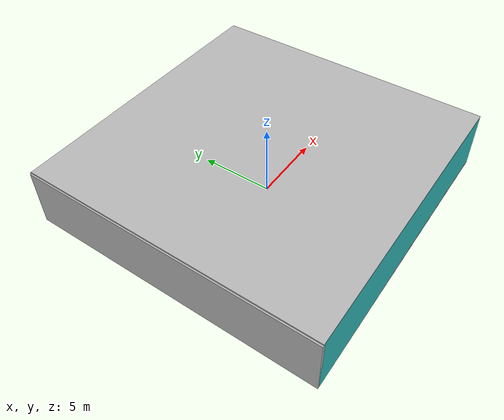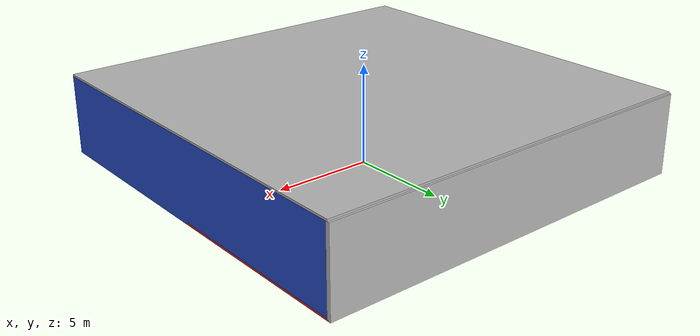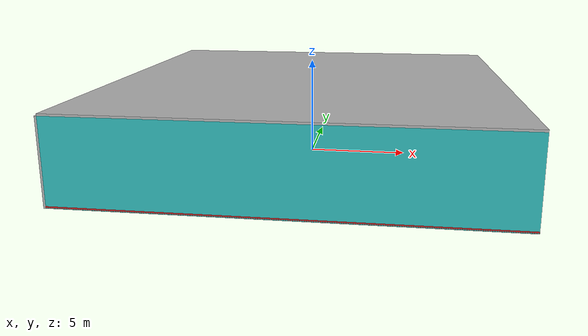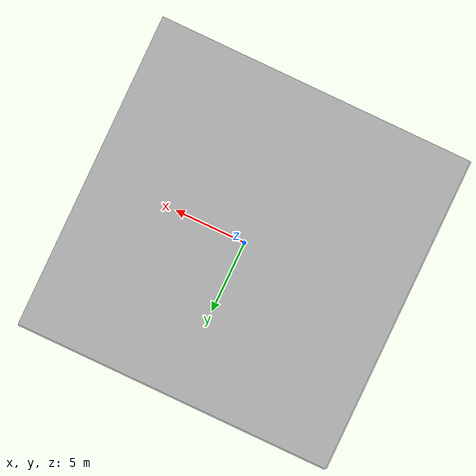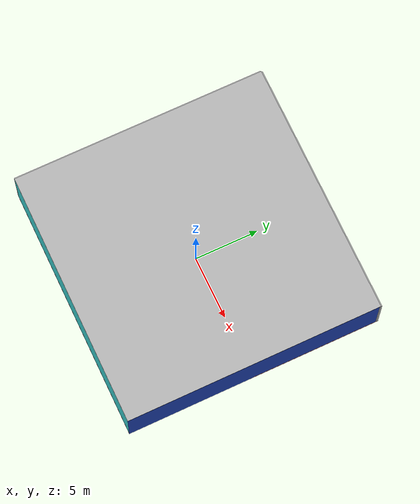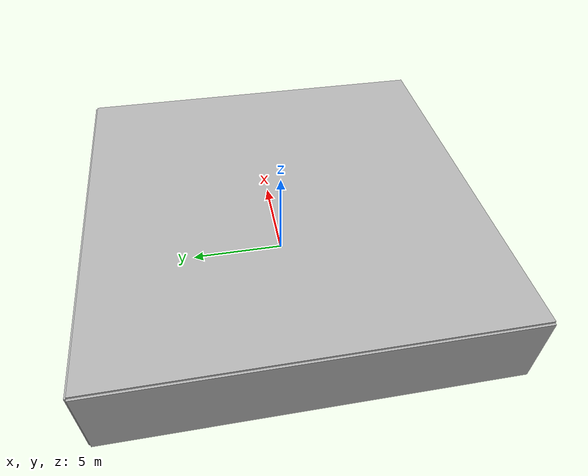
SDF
<sdf version="1.4">
 <world name="default">
  <physics type="ode">
   <max_step_size>0.001</max_step_size>
   <real_time_factor>1</real_time_factor>
   <real_time_update_rate>1000</real_time_update_rate>
   <gravity>0 0 -9.8</gravity>
  </physics>
  <scene><ambient>0.4 0.4 0.4 1</ambient><background>0.7 0.7 0.7 1</background><shadows>1</shadows></scene>
  <model name="Surrounding">
   <static>1</static>
   <link name="Ceiling">
    <collision name="Ceiling_Collision"><geometry><box><size>20 20 0.1</size></box></geometry></collision>
    <visual name="Ceiling_Visual">
     <geometry><box><size>20 20 0.1</size></box></geometry>
     <material>
      <script><uri>file://media/materials/scripts/gazebo.material</uri><name>Gazebo/LightOn</name></script>
     </material>
    </visual>
    <pose>0 0 4.05 0 0 0</pose>
   </link>
   <link name="Wall_South">
    <collision name="Wall_South_Collision">
     <geometry><box><size>20 0 4</size></box></geometry>
     <pose>0 0 2 0 -0 0</pose>
    </collision>
    <visual name="Wall_South_Visual">
     <pose>0 0 2 0 -0 0</pose>
     <geometry><box><size>20 0 4</size></box></geometry>
     <material>
      <script><uri>file://media/materials/scripts/gazebo.material</uri><name>Gazebo/Turquoise</name></script>
     </material>
    </visual>
    <velocity_decay><linear>0</linear><angular>0</angular></velocity_decay>
    <pose>0 -10 0 0 -0 0</pose>
   </link>
   <link name="Wall_East">
    <collision name="Wall_21_Collision">
     <geometry><box><size>20 0 4</size></box></geometry>
     <pose>0 0 2 0 -0 0</pose>
    </collision>
    <visual name="Wall_21_Visual">
     <pose>0 0 2 0 -0 0</pose>
     <geometry><box><size>20 0 4</size></box></geometry>
     <material>
      <script><uri>file://media/materials/scripts/gazebo.material</uri><name>Gazebo/BlueGlow</name></script>
     </material>
    </visual>
    <velocity_decay><linear>0</linear><angular>0</angular></velocity_decay>
    <pose>10 0 0 0 -0 1.5708</pose>
   </link>
   <link name="Wall_North">
    <collision name="Wall_22_Collision">
     <geometry><box><size>20 0.2 4</size></box></geometry>
     <pose>0 0 2 0 -0 0</pose>
    </collision>
    <visual name="Wall_22_Visual">
     <pose>0 0 2 0 -0 0</pose>
     <geometry><box><size>20 0.2 4</size></box></geometry>
     <material>
      <script><uri>file://media/materials/scripts/gazebo.material</uri><name>Gazebo/JointAnchor</name></script>
     </material>
    </visual>
    <velocity_decay><linear>0</linear><angular>0</angular></velocity_decay>
    <pose>0 10 0 0 -0 0</pose>
   </link>
   <link name="Wall_West">
    <collision name="Wall_23_Collision">
     <geometry><box><size>20 0.2 4</size></box></geometry>
     <pose>0 0 2 0 -0 0</pose>
    </collision>
    <visual name="Wall_23_Visual">
     <pose>0 0 2 0 -0 0</pose>
     <geometry><box><size>20 0.2 4</size></box></geometry>
     <material>
      <script><uri>file://media/materials/scripts/gazebo.material</uri><name>Gazebo/LightOff</name></script>
     </material>
    </visual>
    <velocity_decay><linear>0</linear><angular>0</angular></velocity_decay>
    <pose>-10 0 0 0 0 -1.5708</pose>
   </link>
   <link name="Ground_link">
    <collision name="collision">
     <pose>0 0 .05 0 -0 0</pose>
     <geometry><box><size>20 20 0.1</size></box></geometry>
    </collision>
    <visual name="visual">
     <pose>0 0 .05 0 -0 0</pose>
     <geometry><box><size>20 20 0.1</size></box></geometry>
     <material>
      <script><uri>file://media/materials/scripts/gazebo.material</uri><name>Gazebo/RedBright</name></script>
     </material>
    </visual>
   </link>
   <static>1</static>
  </model>
  <spherical_coordinates>
   <surface_model>EARTH_WGS84</surface_model>
   <latitude_deg>0</latitude_deg>
   <longitude_deg>0</longitude_deg>
   <elevation>0</elevation>
   <heading_deg>0</heading_deg>
  </spherical_coordinates>
  <light name="lightball_0" type="diffuse">
   <diffuse>0.8 0.8 0.8 1</diffuse>
   <specular>0.2 0.2 0.2 1</specular>
   <attenuation>
    <range>100</range>
    <constant>0.7</constant>
    <linear>0.01</linear>
    <quadratic>0.001</quadratic>
   </attenuation>
   <direction>-0.5 0.1 -0.9</direction>
   <pose>6.41546906474 7.57084572376 3.1178636654 0 0 0</pose>
  </light>
  <light name="lightball_1" type="diffuse">
   <diffuse>0.8 0.8 0.8 1</diffuse>
   <specular>0.2 0.2 0.2 1</specular>
   <attenuation>
    <range>100</range>
    <constant>0.7</constant>
    <linear>0.01</linear>
    <quadratic>0.001</quadratic>
   </attenuation>
   <direction>-0.5 0.1 -0.9</direction>
   <pose>8.66628273404 -4.60793378901 2.59555333521 0 0 0</pose>
  </light>
  <include><uri>model://table</uri><pose>-5.28294889302 -7.49351417783 0 0 0 0.967371134282</pose></include>
  <include><uri>model://table</uri><pose>-5.12532752087 -4.45160288591 0 0 0 1.12184430029</pose></include>
  <include>
   <uri>model://textured_shapes</uri>
   <pose>1.2052220234 -7.13032525165 0 0 0 1.18879681533</pose>
  </include>
  <include><uri>model://table</uri><pose>2.11637560544 1.5473706494 0 0 0 0.0709785548824</pose></include>
  <include><uri>model://table</uri><pose>4.24487425045 -0.939310166803 0 0 0 0.0822285855056</pose></include>
  <include>
   <uri>model://construction_cone</uri>
   <pose>8.17810913785 3.92650837708 0 0 0 2.19535876561</pose>
  </include>
 </world>
</sdf>

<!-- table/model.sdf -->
<sdf version="1.5">
  <model name="table">
    <static>true</static>
    <link name="link">
      <collision name="surface">
        <pose>0 0 1.0 0 0 0</pose>
        <geometry>
          <box>
            <size>1.5 0.8 0.03</size>
          </box>
        </geometry>
        <surface>
          <friction>
            <ode>
              <mu>0.6</mu>
              <mu2>0.6</mu2>
            </ode>
          </friction>
        </surface>
      </collision>
      <visual name="visual1">
        <pose>0 0 1.0 0 0 0</pose>
        <geometry>
          <box>
            <size>1.5 0.8 0.03</size>
          </box>
        </geometry>
        <material>
          <script>
            <uri>model://media/materials/scripts/gazebo.material</uri>
            <name>Gazebo/Wood</name>
          </script>
        </material>
      </visual>
      <collision name="front_left_leg">
        <pose>0.68 0.38 0.5 0 0 0</pose>
        <geometry>
          <cylinder>
            <radius>0.02</radius>
            <length>1.0</length>
          </cylinder>
        </geometry>
      </collision>
      <visual name="front_left_leg">
        <pose>0.68 0.38 0.5 0 0 0</pose>
        <geometry>
          <cylinder>
            <radius>0.02</radius>
            <length>1.0</length>
          </cylinder>
        </geometry>
        <material>
          <script>
            <uri>model://media/materials/scripts/gazebo.material</uri>
            <name>Gazebo/Grey</name>
          </script>
        </material>
      </visual>
      <collision name="front_right_leg">
        <pose>0.68 -0.38 0.5 0 0 0</pose>
        <geometry>
          <cylinder>
            <radius>0.02</radius>
            <length>1.0</length>
          </cylinder>
        </geometry>
      </collision>
      <visual name="front_right_leg">
        <pose>0.68 -0.38 0.5 0 0 0</pose>
        <geometry>
          <cylinder>
            <radius>0.02</radius>
            <length>1.0</length>
          </cylinder>
        </geometry>
        <material>
          <script>
            <uri>model://media/materials/scripts/gazebo.material</uri>
            <name>Gazebo/Grey</name>
          </script>
        </material>
      </visual>
      <collision name="back_right_leg">
        <pose>-0.68 -0.38 0.5 0 0 0</pose>
        <geometry>
          <cylinder>
            <radius>0.02</radius>
            <length>1.0</length>
          </cylinder>
        </geometry>
      </collision>
      <visual name="back_right_leg">
        <pose>-0.68 -0.38 0.5 0 0 0</pose>
        <geometry>
          <cylinder>
            <radius>0.02</radius>
            <length>1.0</length>
          </cylinder>
        </geometry>
        <material>
          <script>
            <uri>model://media/materials/scripts/gazebo.material</uri>
            <name>Gazebo/Grey</name>
          </script>
        </material>
      </visual>
      <collision name="back_left_leg">
        <pose>-0.68 0.38 0.5 0 0 0</pose>
        <geometry>
          <cylinder>
            <radius>0.02</radius>
            <length>1.0</length>
          </cylinder>
        </geometry>
      </collision>
      <visual name="back_left_leg">
        <pose>-0.68 0.38 0.5 0 0 0</pose>
        <geometry>
          <cylinder>
            <radius>0.02</radius>
            <length>1.0</length>
          </cylinder>
        </geometry>
        <material>
          <script>
            <uri>model://media/materials/scripts/gazebo.material</uri>
            <name>Gazebo/Grey</name>
          </script>
        </material>
      </visual>
    </link>
  </model>
</sdf>

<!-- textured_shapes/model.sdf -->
<sdf version="1.6">
  <model name="textured_shapes">
    <pose>0 0 0.5 0 0 0</pose>
    <link name="box">
      <pose>0 -1.5 0 0 0 0</pose>
      <collision name="collision">
        <geometry>
          <box>
            <size>1 1 1</size>
          </box>
        </geometry>
      </collision>
      <visual name="visual">
        <geometry>
          <box>
            <size>1 1 1</size>
          </box>
        </geometry>
        <material>
          <script>
            <uri>model://../model_source/models/textured_shapes/materials/scripts</uri>
            <uri>model://../model_source/models/textured_shapes/materials/textures</uri>
            <name>TexturedShape/Squares</name>
          </script>
        </material>
      </visual>
    </link>
    <link name="sphere">
      <collision name="collision">
        <geometry>
          <sphere>
            <radius>0.5</radius>
          </sphere>
        </geometry>
      </collision>
      <visual name="visual">
        <geometry>
          <sphere>
            <radius>0.5</radius>
          </sphere>
        </geometry>
        <material>
          <script>
            <uri>model://../model_source/models/textured_shapes/materials/scripts</uri>
            <uri>model://../model_source/models/textured_shapes/materials/textures</uri>
            <name>TexturedShape/Squares</name>
          </script>
        </material>
      </visual>
    </link>
    <link name="cylinder">
      <pose>0 1.5 0 0 0 0</pose>
      <collision name="collision">
        <geometry>
          <cylinder>
            <radius>0.5</radius>
            <length>1</length>
          </cylinder>
        </geometry>
      </collision>
      <visual name="visual">
        <geometry>
          <cylinder>
            <radius>0.5</radius>
            <length>1</length>
          </cylinder>
        </geometry>
        <material>
          <script>
            <uri>model://../model_source/models/textured_shapes/materials/scripts</uri>
            <uri>model://../model_source/models/textured_shapes/materials/textures</uri>
            <name>TexturedShape/Squares</name>
          </script>
        </material>
      </visual>
    </link>
  </model>
</sdf>

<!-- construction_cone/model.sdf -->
<sdf version="1.5">
  <model name="Construction Cone">
    <link name="link">
      <collision name="collision">
        <geometry>
          <mesh>
            <scale>10 10 10</scale>
            <uri>file://isr-testbed/construction_cone/meshes/construction_cone.dae</uri>
          </mesh>
        </geometry>
      </collision>
      <visual name="visual">
        <geometry>
          <mesh>
            <scale>10 10 10</scale>
            <uri>file://isr-testbed/construction_cone/meshes/construction_cone.dae</uri>
          </mesh>
        </geometry>
      </visual>
    </link>
  </model>
</sdf>
